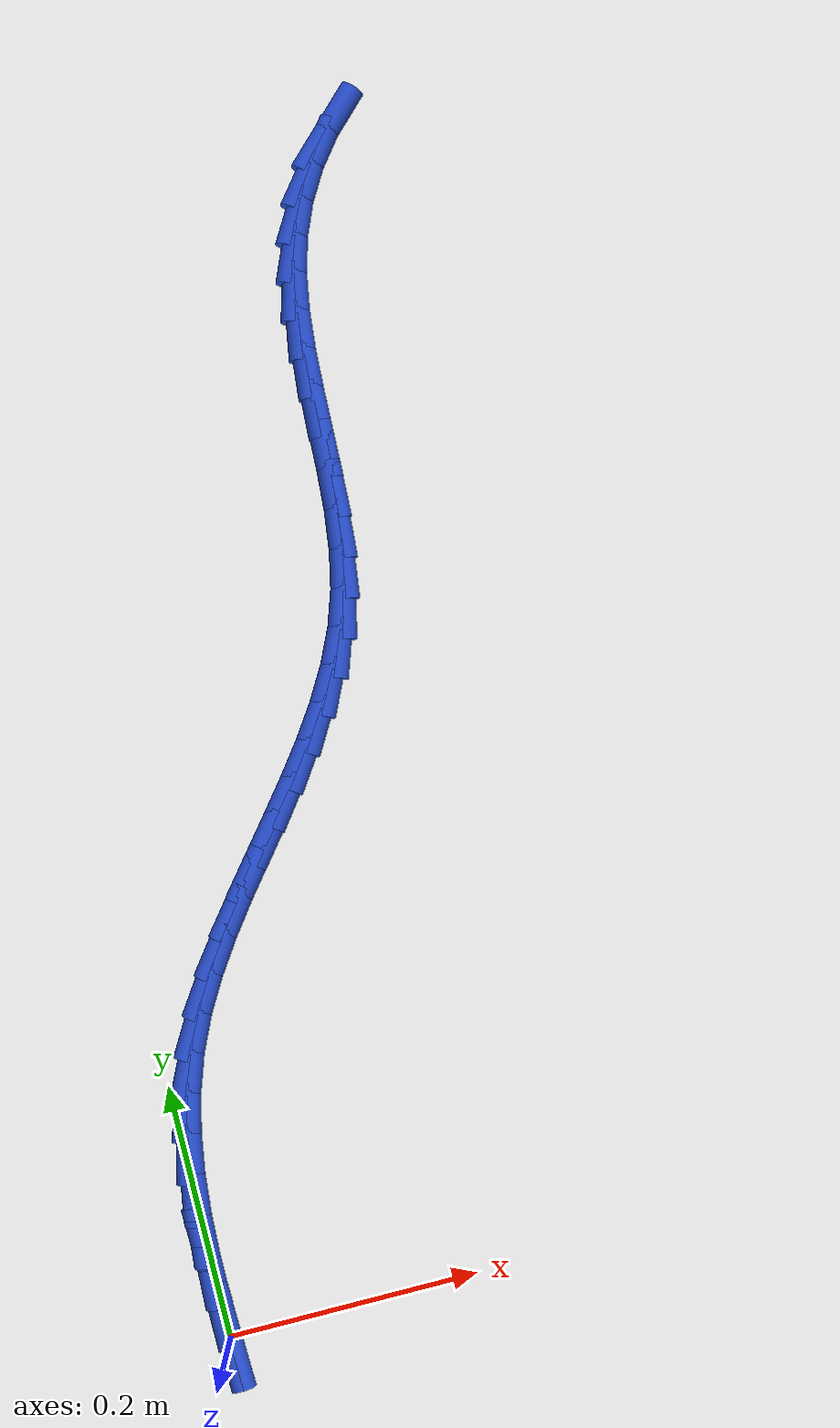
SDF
<sdf version="1.6">
 <world name="default">
  <model name="ground_plane">
   <static>1</static>
   <link name="link">
    <collision name="collision">
     <geometry><plane><normal>0 0 1</normal><size>100 100</size></plane></geometry>
     <surface><friction><ode><mu>100</mu><mu2>50</mu2></ode></friction></surface>
    </collision>
    <visual name="visual">
     <cast_shadows>0</cast_shadows>
     <geometry><plane><normal>0 0 1</normal><size>100 100</size></plane></geometry>
     <material>
      <script><uri>file://media/materials/scripts/gazebo.material</uri><name>Gazebo/WhiteGlow</name></script>
     </material>
    </visual>
   </link>
  </model>
  <model name="line">
   <link name="link_0">
    <pose>1.1519648082658485e-18 6.938893903907228e-18 0.01 0 1.57 -1.5338162595452545</pose>
    <collision name="collision">
     <geometry><cylinder><radius>0.01</radius><length>0.08</length></cylinder></geometry>
    </collision>
    <visual name="visual">
     <material>
      <script><name>Gazebo/Blue</name><uri>file://media/materials/scripts/gazebo.material</uri></script>
     </material>
     <geometry><cylinder><radius>0.01</radius><length>0.08</length></cylinder></geometry>
    </visual>
   </link>
   <link name="link_1">
    <pose>-0.0011977544330981475 0.03237442454354316 0.01 0 1.57 -1.5638264975725031</pose>
    <collision name="collision">
     <geometry><cylinder><radius>0.01</radius><length>0.08</length></cylinder></geometry>
    </collision>
    <visual name="visual">
     <material>
      <script><name>Gazebo/Blue</name><uri>file://media/materials/scripts/gazebo.material</uri></script>
     </material>
     <geometry><cylinder><radius>0.01</radius><length>0.08</length></cylinder></geometry>
    </visual>
   </link>
   <link name="link_2">
    <pose>-0.0014253005337339182 0.0650211951810804 0.01 0 1.57 1.5364610037955164</pose>
    <collision name="collision">
     <geometry><cylinder><radius>0.01</radius><length>0.08</length></cylinder></geometry>
    </collision>
    <visual name="visual">
     <material>
      <script><name>Gazebo/Blue</name><uri>file://media/materials/scripts/gazebo.material</uri></script>
     </material>
     <geometry><cylinder><radius>0.01</radius><length>0.08</length></cylinder></geometry>
    </visual>
   </link>
   <link name="link_3">
    <pose>-0.0003037698806871436 0.0976724065553438 0.01 0 1.57 1.4830422235623202</pose>
    <collision name="collision">
     <geometry><cylinder><radius>0.01</radius><length>0.08</length></cylinder></geometry>
    </collision>
    <visual name="visual">
     <material>
      <script><name>Gazebo/Blue</name><uri>file://media/materials/scripts/gazebo.material</uri></script>
     </material>
     <geometry><cylinder><radius>0.01</radius><length>0.08</length></cylinder></geometry>
    </visual>
   </link>
   <link name="link_4">
    <pose>0.002545705947262344 0.13006015330906545 0.01 0 1.57 1.416451406037097</pose>
    <collision name="collision">
     <geometry><cylinder><radius>0.01</radius><length>0.08</length></cylinder></geometry>
    </collision>
    <visual name="visual">
     <material>
      <script><name>Gazebo/Blue</name><uri>file://media/materials/scripts/gazebo.material</uri></script>
     </material>
     <geometry><cylinder><radius>0.01</radius><length>0.08</length></cylinder></geometry>
    </visual>
   </link>
   <link name="link_5">
    <pose>0.0075019953713347165 0.16191653008497753 0.01 0 1.57 1.335608586323593</pose>
    <collision name="collision">
     <geometry><cylinder><radius>0.01</radius><length>0.08</length></cylinder></geometry>
    </collision>
    <visual name="visual">
     <material>
      <script><name>Gazebo/Blue</name><uri>file://media/materials/scripts/gazebo.material</uri></script>
     </material>
     <geometry><cylinder><radius>0.01</radius><length>0.08</length></cylinder></geometry>
    </visual>
   </link>
   <link name="link_6">
    <pose>0.014943966812750141 0.19297363152581193 0.01 0 1.57 1.2397752223210572</pose>
    <collision name="collision">
     <geometry><cylinder><radius>0.01</radius><length>0.08</length></cylinder></geometry>
    </collision>
    <visual name="visual">
     <material>
      <script><name>Gazebo/Blue</name><uri>file://media/materials/scripts/gazebo.material</uri></script>
     </material>
     <geometry><cylinder><radius>0.01</radius><length>0.08</length></cylinder></geometry>
    </visual>
   </link>
   <link name="link_7">
    <pose>0.025250488140888882 0.22296355256153097 0.01 0 1.57 1.135085195168869</pose>
    <collision name="collision">
     <geometry><cylinder><radius>0.01</radius><length>0.08</length></cylinder></geometry>
    </collision>
    <visual name="visual">
     <material>
      <script><name>Gazebo/Blue</name><uri>file://media/materials/scripts/gazebo.material</uri></script>
     </material>
     <geometry><cylinder><radius>0.01</radius><length>0.08</length></cylinder></geometry>
    </visual>
   </link>
   <link name="link_8">
    <pose>0.03863168303543045 0.25170621867577436 0.01 0 1.57 1.0456678746113428</pose>
    <collision name="collision">
     <geometry><cylinder><radius>0.01</radius><length>0.08</length></cylinder></geometry>
    </collision>
    <visual name="visual">
     <material>
      <script><name>Gazebo/Blue</name><uri>file://media/materials/scripts/gazebo.material</uri></script>
     </material>
     <geometry><cylinder><radius>0.01</radius><length>0.08</length></cylinder></geometry>
    </visual>
   </link>
   <link name="link_9">
    <pose>0.05465252050525628 0.27935735531094974 0.01 0 1.57 0.9774498484821887</pose>
    <collision name="collision">
     <geometry><cylinder><radius>0.01</radius><length>0.08</length></cylinder></geometry>
    </collision>
    <visual name="visual">
     <material>
      <script><name>Gazebo/Blue</name><uri>file://media/materials/scripts/gazebo.material</uri></script>
     </material>
     <geometry><cylinder><radius>0.01</radius><length>0.08</length></cylinder></geometry>
    </visual>
   </link>
   <link name="link_10">
    <pose>0.07272380981255602 0.3061529273294461 0.01 0 1.57 0.9297306780575509</pose>
    <collision name="collision">
     <geometry><cylinder><radius>0.01</radius><length>0.08</length></cylinder></geometry>
    </collision>
    <visual name="visual">
     <material>
      <script><name>Gazebo/Blue</name><uri>file://media/materials/scripts/gazebo.material</uri></script>
     </material>
     <geometry><cylinder><radius>0.01</radius><length>0.08</length></cylinder></geometry>
    </visual>
   </link>
   <link name="link_11">
    <pose>0.09225636021951933 0.332328899593652 0.01 0 1.57 0.9014986051978914</pose>
    <collision name="collision">
     <geometry><cylinder><radius>0.01</radius><length>0.08</length></cylinder></geometry>
    </collision>
    <visual name="visual">
     <material>
      <script><name>Gazebo/Blue</name><uri>file://media/materials/scripts/gazebo.material</uri></script>
     </material>
     <geometry><cylinder><radius>0.01</radius><length>0.08</length></cylinder></geometry>
    </visual>
   </link>
   <link name="link_12">
    <pose>0.11266098098833585 0.3581212369659564 0.01 0 1.57 0.8919845960247458</pose>
    <collision name="collision">
     <geometry><cylinder><radius>0.01</radius><length>0.08</length></cylinder></geometry>
    </collision>
    <visual name="visual">
     <material>
      <script><name>Gazebo/Blue</name><uri>file://media/materials/scripts/gazebo.material</uri></script>
     </material>
     <geometry><cylinder><radius>0.01</radius><length>0.08</length></cylinder></geometry>
    </visual>
   </link>
   <link name="link_13">
    <pose>0.13334848138119518 0.3837659043087477 0.01 0 1.57 0.9009361889354707</pose>
    <collision name="collision">
     <geometry><cylinder><radius>0.01</radius><length>0.08</length></cylinder></geometry>
    </collision>
    <visual name="visual">
     <material>
      <script><name>Gazebo/Blue</name><uri>file://media/materials/scripts/gazebo.material</uri></script>
     </material>
     <geometry><cylinder><radius>0.01</radius><length>0.08</length></cylinder></geometry>
    </visual>
   </link>
   <link name="link_14">
    <pose>0.153729670660287 0.40949886648441486 0.01 0 1.57 0.928702320163712</pose>
    <collision name="collision">
     <geometry><cylinder><radius>0.01</radius><length>0.08</length></cylinder></geometry>
    </collision>
    <visual name="visual">
     <material>
      <script><name>Gazebo/Blue</name><uri>file://media/materials/scripts/gazebo.material</uri></script>
     </material>
     <geometry><cylinder><radius>0.01</radius><length>0.08</length></cylinder></geometry>
    </visual>
   </link>
   <link name="link_15">
    <pose>0.17321535808780092 0.4355560883553464 0.01 0 1.57 0.9761640149685221</pose>
    <collision name="collision">
     <geometry><cylinder><radius>0.01</radius><length>0.08</length></cylinder></geometry>
    </collision>
    <visual name="visual">
     <material>
      <script><name>Gazebo/Blue</name><uri>file://media/materials/scripts/gazebo.material</uri></script>
     </material>
     <geometry><cylinder><radius>0.01</radius><length>0.08</length></cylinder></geometry>
    </visual>
   </link>
   <link name="link_16">
    <pose>0.1912163529259267 0.4621735347839316 0.01 0 1.57 1.044470331225712</pose>
    <collision name="collision">
     <geometry><cylinder><radius>0.01</radius><length>0.08</length></cylinder></geometry>
    </collision>
    <visual name="visual">
     <material>
      <script><name>Gazebo/Blue</name><uri>file://media/materials/scripts/gazebo.material</uri></script>
     </material>
     <geometry><cylinder><radius>0.01</radius><length>0.08</length></cylinder></geometry>
    </visual>
   </link>
   <link name="link_17">
    <pose>0.2071434644368538 0.4895871706325585 0.01 0 1.57 1.1344770753772226</pose>
    <collision name="collision">
     <geometry><cylinder><radius>0.01</radius><length>0.08</length></cylinder></geometry>
    </collision>
    <visual name="visual">
     <material>
      <script><name>Gazebo/Blue</name><uri>file://media/materials/scripts/gazebo.material</uri></script>
     </material>
     <geometry><cylinder><radius>0.01</radius><length>0.08</length></cylinder></geometry>
    </visual>
   </link>
   <link name="link_18">
    <pose>0.22040750188277203 0.5180329607636163 0.01 0 1.57 1.2455906043086944</pose>
    <collision name="collision">
     <geometry><cylinder><radius>0.01</radius><length>0.08</length></cylinder></geometry>
    </collision>
    <visual name="visual">
     <material>
      <script><name>Gazebo/Blue</name><uri>file://media/materials/scripts/gazebo.material</uri></script>
     </material>
     <geometry><cylinder><radius>0.01</radius><length>0.08</length></cylinder></geometry>
    </visual>
   </link>
   <link name="link_19">
    <pose>0.2304254790043768 0.5477443039159888 0.01 0 1.57 1.3588311836127835</pose>
    <collision name="collision">
     <geometry><cylinder><radius>0.01</radius><length>0.08</length></cylinder></geometry>
    </collision>
    <visual name="visual">
     <material>
      <script><name>Gazebo/Blue</name><uri>file://media/materials/scripts/gazebo.material</uri></script>
     </material>
     <geometry><cylinder><radius>0.01</radius><length>0.08</length></cylinder></geometry>
    </visual>
   </link>
   <link name="link_20">
    <pose>0.2370987548177766 0.5787542774325947 0.01 0 1.57 1.4448037140467622</pose>
    <collision name="collision">
     <geometry><cylinder><radius>0.01</radius><length>0.08</length></cylinder></geometry>
    </collision>
    <visual name="visual">
     <material>
      <script><name>Gazebo/Blue</name><uri>file://media/materials/scripts/gazebo.material</uri></script>
     </material>
     <geometry><cylinder><radius>0.01</radius><length>0.08</length></cylinder></geometry>
    </visual>
   </link>
   <link name="link_21">
    <pose>0.24115212927113275 0.6107553899641845 0.01 0 1.57 1.5023511678336026</pose>
    <collision name="collision">
     <geometry><cylinder><radius>0.01</radius><length>0.08</length></cylinder></geometry>
    </collision>
    <visual name="visual">
     <material>
      <script><name>Gazebo/Blue</name><uri>file://media/materials/scripts/gazebo.material</uri></script>
     </material>
     <geometry><cylinder><radius>0.01</radius><length>0.08</length></cylinder></geometry>
    </visual>
   </link>
   <link name="link_22">
    <pose>0.24339047266090846 0.6434070336952997 0.01 0 1.57 1.533552506006652</pose>
    <collision name="collision">
     <geometry><cylinder><radius>0.01</radius><length>0.08</length></cylinder></geometry>
    </collision>
    <visual name="visual">
     <material>
      <script><name>Gazebo/Blue</name><uri>file://media/materials/scripts/gazebo.material</uri></script>
     </material>
     <geometry><cylinder><radius>0.01</radius><length>0.08</length></cylinder></geometry>
    </visual>
   </link>
   <link name="link_23">
    <pose>0.24461865528356658 0.676368600810481 0.01 0 1.57 1.5397445211642842</pose>
    <collision name="collision">
     <geometry><cylinder><radius>0.01</radius><length>0.08</length></cylinder></geometry>
    </collision>
    <visual name="visual">
     <material>
      <script><name>Gazebo/Blue</name><uri>file://media/materials/scripts/gazebo.material</uri></script>
     </material>
     <geometry><cylinder><radius>0.01</radius><length>0.08</length></cylinder></geometry>
    </visual>
   </link>
   <link name="link_24">
    <pose>0.24564154743557015 0.7092994834942695 0.01 0 1.57 1.5210066634106196</pose>
    <collision name="collision">
     <geometry><cylinder><radius>0.01</radius><length>0.08</length></cylinder></geometry>
    </collision>
    <visual name="visual">
     <material>
      <script><name>Gazebo/Blue</name><uri>file://media/materials/scripts/gazebo.material</uri></script>
     </material>
     <geometry><cylinder><radius>0.01</radius><length>0.08</length></cylinder></geometry>
    </visual>
   </link>
   <link name="link_25">
    <pose>0.24726401941338239 0.7418590739312065 0.01 0 1.57 1.476037278993582</pose>
    <collision name="collision">
     <geometry><cylinder><radius>0.01</radius><length>0.08</length></cylinder></geometry>
    </collision>
    <visual name="visual">
     <material>
      <script><name>Gazebo/Blue</name><uri>file://media/materials/scripts/gazebo.material</uri></script>
     </material>
     <geometry><cylinder><radius>0.01</radius><length>0.08</length></cylinder></geometry>
    </visual>
   </link>
   <link name="link_26">
    <pose>0.25029094151346604 0.7737067643058326 0.01 0 1.57 1.402372668532106</pose>
    <collision name="collision">
     <geometry><cylinder><radius>0.01</radius><length>0.08</length></cylinder></geometry>
    </collision>
    <visual name="visual">
     <material>
      <script><name>Gazebo/Blue</name><uri>file://media/materials/scripts/gazebo.material</uri></script>
     </material>
     <geometry><cylinder><radius>0.01</radius><length>0.08</length></cylinder></geometry>
    </visual>
   </link>
   <link name="link_27">
    <pose>0.2555271840322842 0.8045019468026888 0.01 0 1.57 1.2973821305707063</pose>
    <collision name="collision">
     <geometry><cylinder><radius>0.01</radius><length>0.08</length></cylinder></geometry>
    </collision>
    <visual name="visual">
     <material>
      <script><name>Gazebo/Blue</name><uri>file://media/materials/scripts/gazebo.material</uri></script>
     </material>
     <geometry><cylinder><radius>0.01</radius><length>0.08</length></cylinder></geometry>
    </visual>
   </link>
   <link name="link_28">
    <pose>0.26377307075466094 0.83390561649291 0.01 0 1.57 1.1700862440797273</pose>
    <collision name="collision">
     <geometry><cylinder><radius>0.01</radius><length>0.08</length></cylinder></geometry>
    </collision>
    <visual name="visual">
     <material>
      <script><name>Gazebo/Blue</name><uri>file://media/materials/scripts/gazebo.material</uri></script>
     </material>
     <geometry><cylinder><radius>0.01</radius><length>0.08</length></cylinder></geometry>
    </visual>
   </link>
   <link name="link_29">
    <pose>0.2755394894066221 0.8616808100159998 0.01 0 1.57 1.0389793840416084</pose>
    <collision name="collision">
     <geometry><cylinder><radius>0.01</radius><length>0.08</length></cylinder></geometry>
    </collision>
    <visual name="visual">
     <material>
      <script><name>Gazebo/Blue</name><uri>file://media/materials/scripts/gazebo.material</uri></script>
     </material>
     <geometry><cylinder><radius>0.01</radius><length>0.08</length></cylinder></geometry>
    </visual>
   </link>
   <link name="link_30">
    <pose>0.29087885961140364 0.8877521983442789 0.01 0 1.57 0.909265815269875</pose>
    <collision name="collision">
     <geometry><cylinder><radius>0.01</radius><length>0.08</length></cylinder></geometry>
    </collision>
    <visual name="visual">
     <material>
      <script><name>Gazebo/Blue</name><uri>file://media/materials/scripts/gazebo.material</uri></script>
     </material>
     <geometry><cylinder><radius>0.01</radius><length>0.08</length></cylinder></geometry>
    </visual>
   </link>
   <link name="link_31">
    <pose>0.3098029896846998 0.9120587700908345 0.01 0 1.57 0.7845103147579487</pose>
    <collision name="collision">
     <geometry><cylinder><radius>0.01</radius><length>0.08</length></cylinder></geometry>
    </collision>
    <visual name="visual">
     <material>
      <script><name>Gazebo/Blue</name><uri>file://media/materials/scripts/gazebo.material</uri></script>
     </material>
     <geometry><cylinder><radius>0.01</radius><length>0.08</length></cylinder></geometry>
    </visual>
   </link>
   <link name="link_280">
    <pose>1.6872896309305663e-17 -1.942890293094024e-16 0.01 0 1.57 -1.5319817057990939</pose>
    <collision name="collision">
     <geometry><cylinder><radius>0.01</radius><length>0.08</length></cylinder></geometry>
    </collision>
    <visual name="visual">
     <material>
      <script><name>Gazebo/Blue</name><uri>file://media/materials/scripts/gazebo.material</uri></script>
     </material>
     <geometry><cylinder><radius>0.01</radius><length>0.08</length></cylinder></geometry>
    </visual>
   </link>
   <link name="link_281">
    <pose>-0.0012602360889893468 0.03245176980014439 0.01 0 1.57 -1.5507642370518917</pose>
    <collision name="collision">
     <geometry><cylinder><radius>0.01</radius><length>0.08</length></cylinder></geometry>
    </collision>
    <visual name="visual">
     <material>
      <script><name>Gazebo/Blue</name><uri>file://media/materials/scripts/gazebo.material</uri></script>
     </material>
     <geometry><cylinder><radius>0.01</radius><length>0.08</length></cylinder></geometry>
    </visual>
   </link>
   <link name="link_282">
    <pose>-0.0019251537808636296 0.0656399572338925 0.01 0 1.57 -1.54147573995283</pose>
    <collision name="collision">
     <geometry><cylinder><radius>0.01</radius><length>0.08</length></cylinder></geometry>
    </collision>
    <visual name="visual">
     <material>
      <script><name>Gazebo/Blue</name><uri>file://media/materials/scripts/gazebo.material</uri></script>
     </material>
     <geometry><cylinder><radius>0.01</radius><length>0.08</length></cylinder></geometry>
    </visual>
   </link>
  </model>
 </world>
</sdf>
